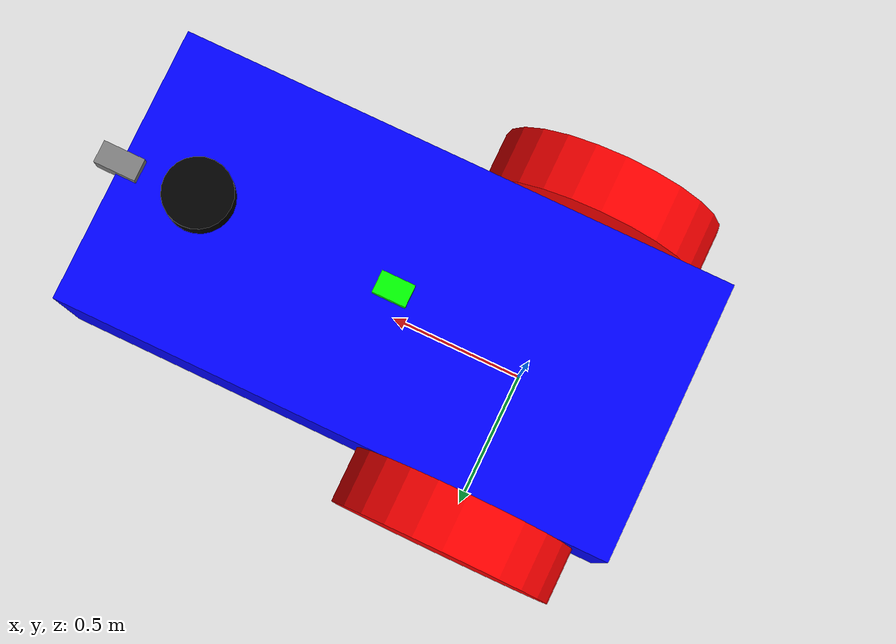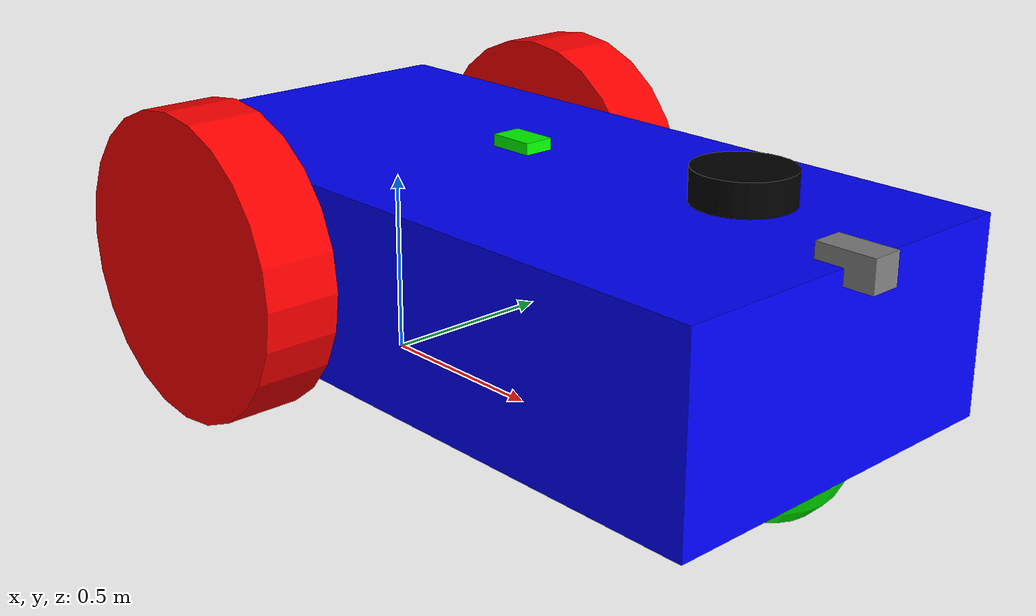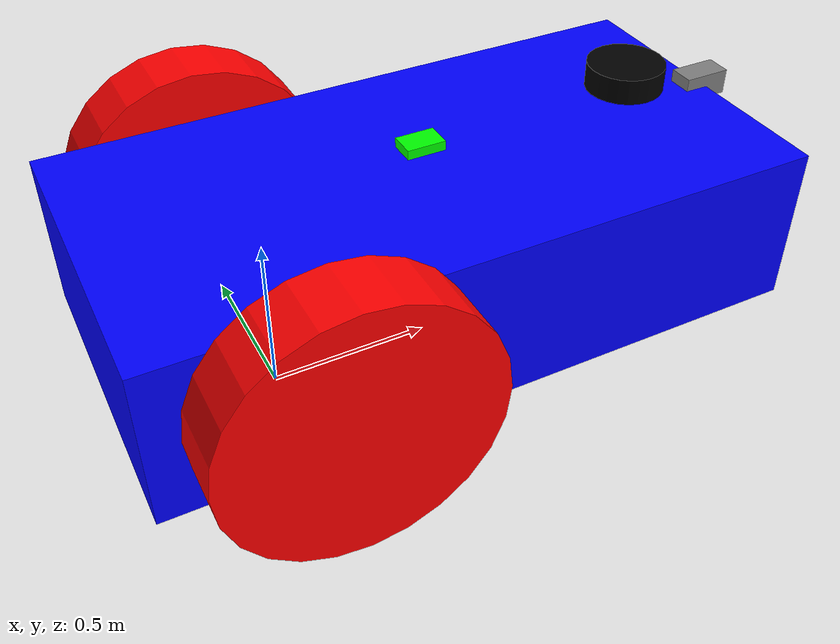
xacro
<?xml version="1.0"?>
<robot name="robot1" xmlns:xacro="http://www.ros.org/wiki/xacro">

    <!-- 색상 정의 -->
    <material name="blue">
        <color rgba="0.0 0.0 1.0 1.0"/>
    </material>

    <material name="red">
        <color rgba="1.0 0.0 0.0 1.0"/>
    </material>

    <material name="green">
        <color rgba="0.0 1.0 0.0 1.0"/>
    </material>

    <material name="black">
        <color rgba="0.0 0.0 0.0 1.0"/>
    </material>

    <material name="gray">
        <color rgba="0.5 0.5 0.5 1.0"/>
    </material>

    <!-- 기준 링크: base_link -->
    <link name="base_link">
        <visual>
            <origin xyz="0.5 0 0.4" rpy="0 0 0"/>
            <geometry>
                <box size="2.0 1.0 0.5"/>
            </geometry>
            <material name="blue"/>
        </visual>

        <collision>
            <origin xyz="0.5 0 0.4" rpy="0 0 0"/>
            <geometry>
                <box size="2.0 1.0 0.5"/>
            </geometry>
        </collision>

        <inertial>
            <origin xyz="0.5 0 0.4" rpy="0 0 0"/>
            <mass value="1.14395"/>
            <inertia
                ixx="0.095329" ixy="0" ixz="0"
                iyy="0.381317" iyz="0"
                izz="0.476646"/>
        </inertial>
    </link>

    <!-- 왼쪽 바퀴 -->
    <link name="left_wheel_link">
        <visual>
            <origin xyz="0 0 0" rpy="1.5708 0 0"/>
            <geometry>
                <cylinder radius="0.4" length="0.2"/>
            </geometry>
            <material name="red"/>
        </visual>

        <collision>
            <origin xyz="0 0 0" rpy="1.5708 0 0"/>
            <geometry>
                <cylinder radius="0.4" length="0.2"/>
            </geometry>
        </collision>
    </link>

    <joint name="left_wheel_joint" type="continuous">
        <parent link="base_link"/>
        <child link="left_wheel_link"/>
        <origin xyz="0.0 0.6 0.4" rpy="0 0 0"/>
        <axis xyz="0 1 0"/>
    </joint>

    <!-- 오른쪽 바퀴 -->
    <link name="right_wheel_link">
        <visual>
            <origin xyz="0 0 0" rpy="1.5708 0 0"/>
            <geometry>
                <cylinder radius="0.4" length="0.2"/>
            </geometry>
            <material name="red"/>
        </visual>

        <collision>
            <origin xyz="0 0 0" rpy="1.5708 0 0"/>
            <geometry>
                <cylinder radius="0.4" length="0.2"/>
            </geometry>
        </collision>
    </link>

    <joint name="right_wheel_joint" type="continuous">
        <parent link="base_link"/>
        <child link="right_wheel_link"/>
        <origin xyz="0.0 -0.6 0.4" rpy="0 0 0"/>
        <axis xyz="0 1 0"/>
    </joint>

    <!-- 캐스터 바퀴 -->
    <link name="caster_link">
        <visual>
            <origin xyz="0 0 0" rpy="0 0 0"/>
            <geometry>
                <sphere radius="0.2"/>
            </geometry>
            <material name="green"/>
        </visual>

        <collision>
            <origin xyz="0 0 0" rpy="0 0 0"/>
            <geometry>
                <sphere radius="0.2"/>
            </geometry>
        </collision>
    </link>

    <joint name="caster_joint" type="fixed">
        <parent link="base_link"/>
        <child link="caster_link"/>
        <origin xyz="1.3 0 0.2" rpy="0 0 0"/>
    </joint>

    <!-- LiDAR 링크 -->
    <link name="lidar_link">
        <visual>
            <origin xyz="0 0 0" rpy="0 0 0"/>
            <geometry>
                <cylinder radius="0.12" length="0.08"/>
            </geometry>
            <material name="black"/>
        </visual>
    </link>

    <joint name="lidar_joint" type="fixed">
        <parent link="base_link"/>
        <child link="lidar_link"/>
        <origin xyz="1.2 0 0.75" rpy="0 0 0"/>
    </joint>

    <!-- 카메라 링크 -->
    <link name="camera_link">
        <visual>
            <origin xyz="0 0 0" rpy="0 0 0"/>
            <geometry>
                <box size="0.15 0.08 0.08"/>
            </geometry>
            <material name="gray"/>
        </visual>
    </link>

    <joint name="camera_joint" type="fixed">
        <parent link="base_link"/>
        <child link="camera_link"/>
        <origin xyz="1.5 0 0.65" rpy="0 0 0"/>
    </joint>

    <!-- IMU 링크 -->
    <link name="imu_link">
        <visual>
            <origin xyz="0 0 0" rpy="0 0 0"/>
            <geometry>
                <box size="0.12 0.08 0.03"/>
            </geometry>
            <material name="green"/>
        </visual>
    </link>

    <joint name="imu_joint" type="fixed">
        <parent link="base_link"/>
        <child link="imu_link"/>
        <origin xyz="0.5 0 0.7" rpy="0 0 0"/>
    </joint>

</robot>
